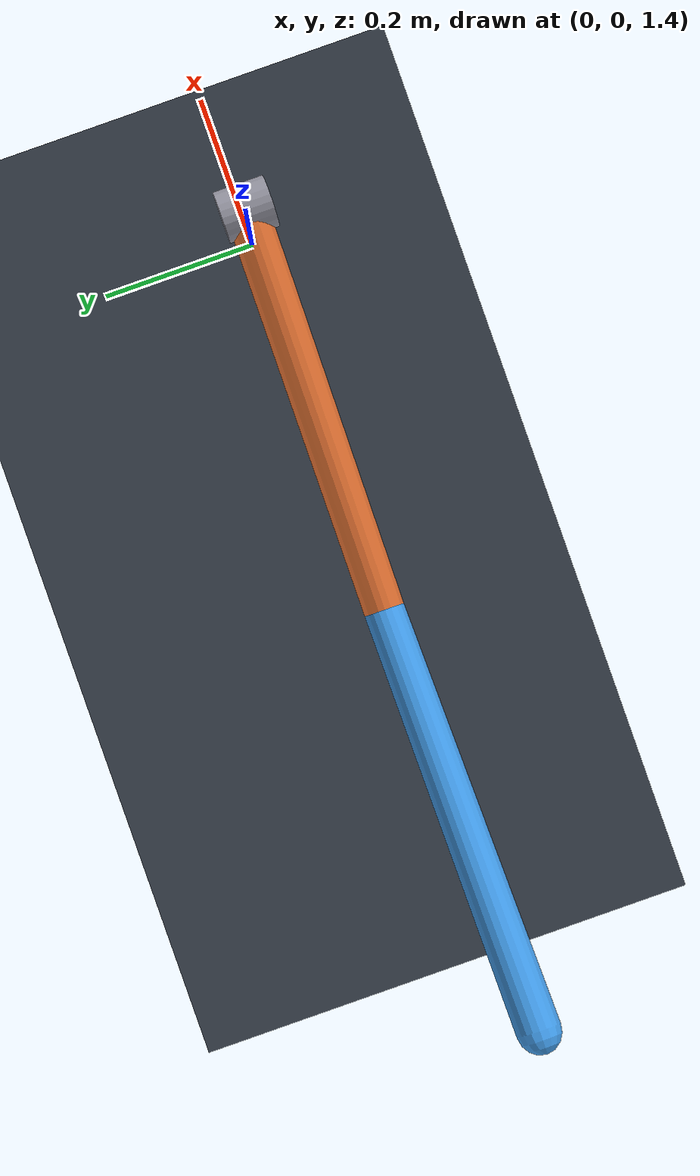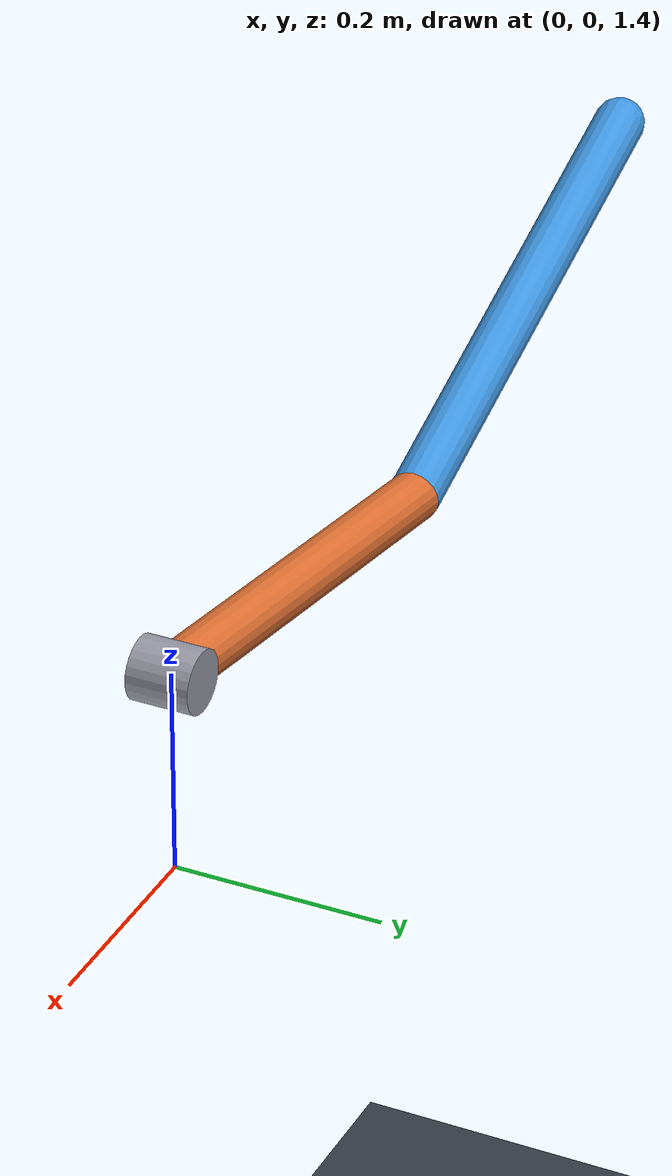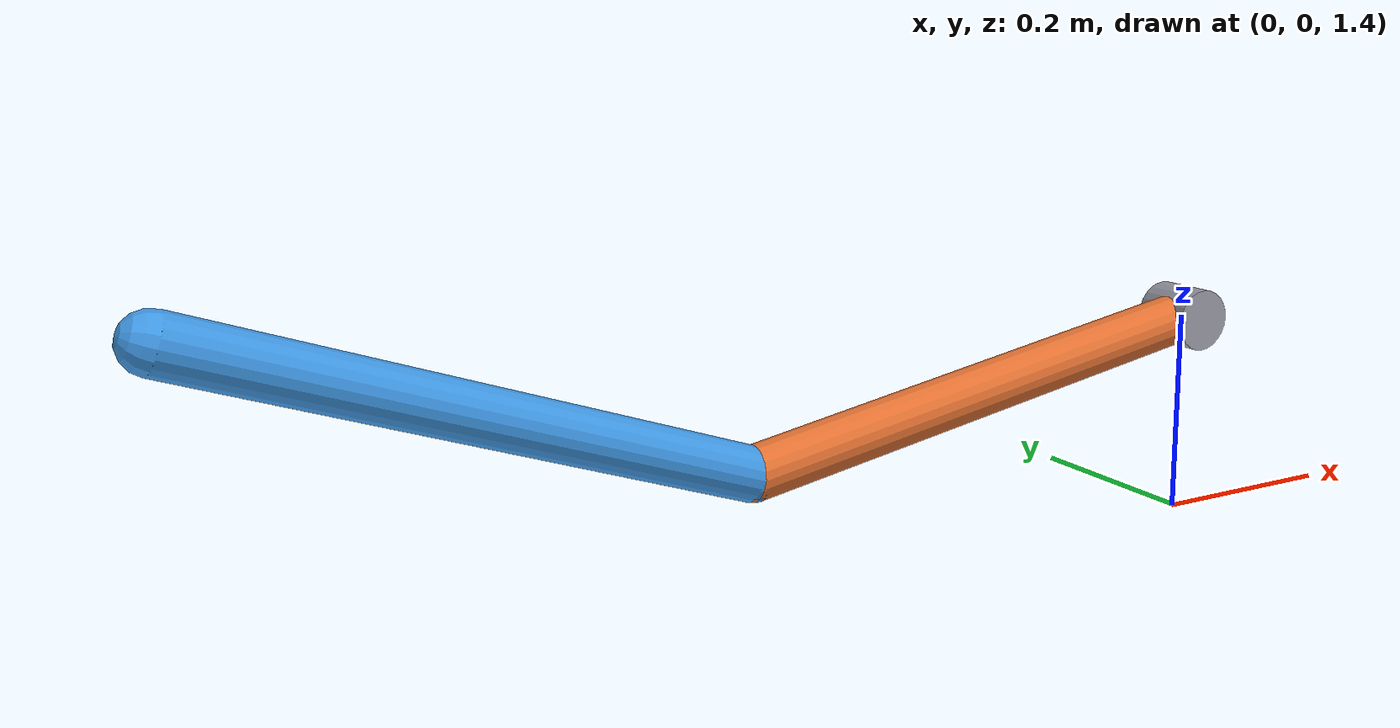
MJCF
<!-- MuJoCo Lab model, written for this site (stella-nova/pages/mujoco-lab). -->
<!-- Frictionless and undamped, with no contacts: the total energy is a
     conserved quantity, so this model checks the integrators. -->
<mujoco model="double pendulum">
  <option timestep="0.001" integrator="RK4"><flag contact="disable"/></option>
  <visual><global azimuth="90" elevation="-5"/></visual>
  <worldbody>
    <light pos="0 -2 3" dir="0 .5 -1"/>
    <geom name="floor" type="plane" size="3 3 .1" rgba=".2 .23 .27 1"/>
    <geom name="pivot" type="cylinder" pos="0 0 1.6" size=".03 .03" zaxis="0 1 0" rgba=".6 .6 .65 1"/>
    <body name="upper" pos="0 0 1.6" euler="0 80 0">
      <joint name="shoulder" type="hinge" axis="0 1 0"/>
      <geom name="upper" type="capsule" fromto="0 0 0 0 0 -.5" size=".025" mass="1" rgba=".9 .45 .2 1"/>
      <body name="lower" pos="0 0 -.5" euler="0 30 0">
        <joint name="elbow" type="hinge" axis="0 1 0"/>
        <geom name="lower" type="capsule" fromto="0 0 0 0 0 -.5" size=".025" mass="1" rgba=".25 .6 .9 1"/>
        <site name="tip" pos="0 0 -.5" size=".02"/>
      </body>
    </body>
  </worldbody>
  <sensor><framepos name="tip" objtype="site" objname="tip"/></sensor>
</mujoco>
